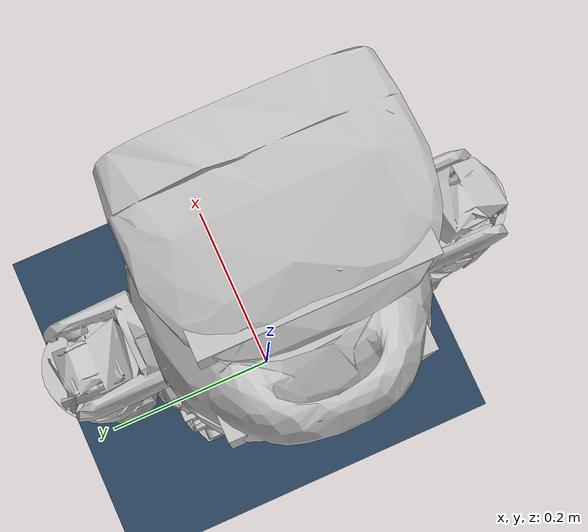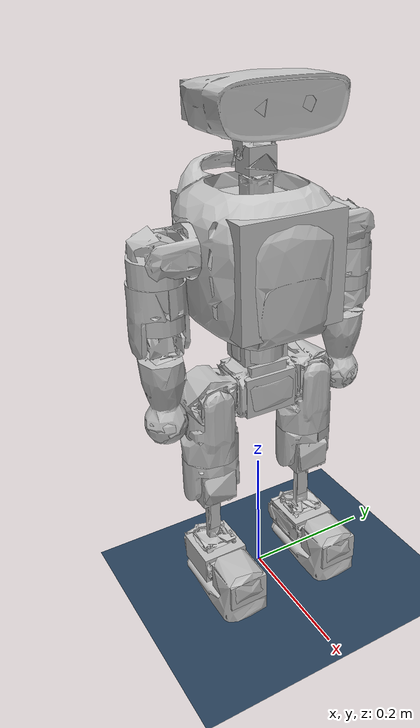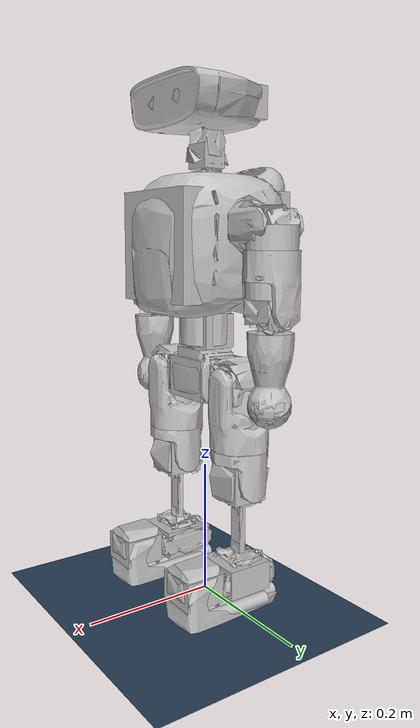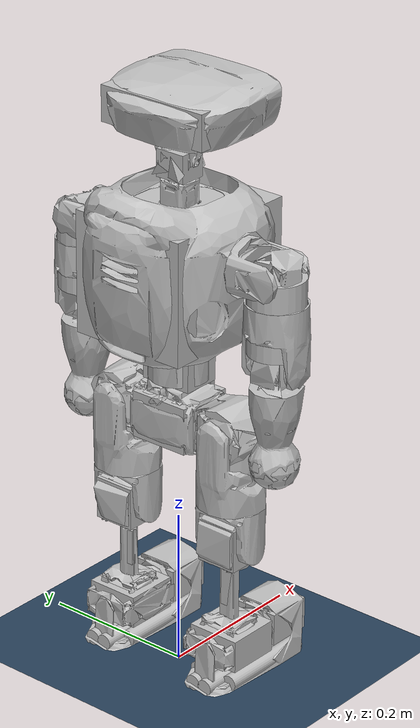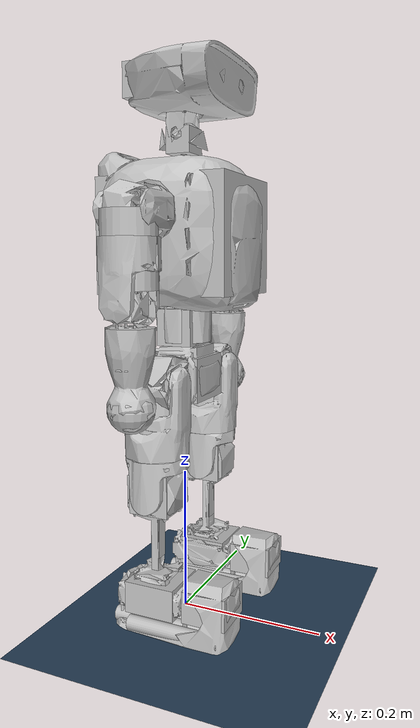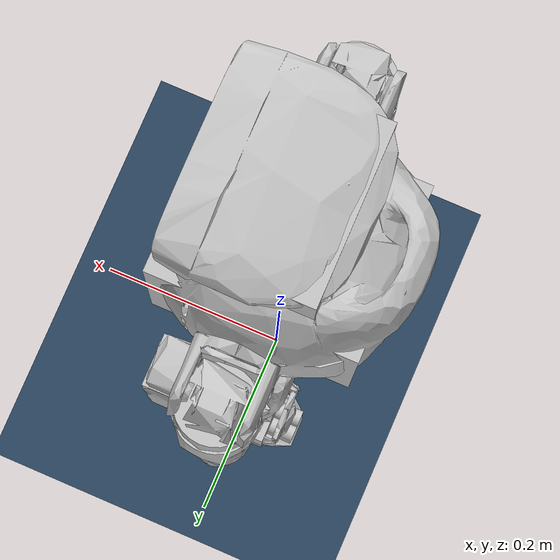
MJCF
<mujoco model="mini_pi_plus_pro scene">
  <include file="mini_pi.xml"/>

  <statistic center="0 0 0.25" extent="0.6"/>

  <visual>
    <headlight diffuse="0.6 0.6 0.6" ambient="0.3 0.3 0.3" specular="0 0 0"/>
    <rgba haze="0.15 0.25 0.35 1"/>
    <global azimuth="-160" elevation="-20"/>
  </visual>

  <asset>
    <texture type="skybox" builtin="gradient" rgb1="0.3 0.5 0.7" rgb2="0 0 0" width="512" height="3072"/>
    <texture type="2d" name="groundplane" builtin="checker" mark="edge" rgb1="0.2 0.3 0.4" rgb2="0.1 0.2 0.3"
      markrgb="0.8 0.8 0.8" width="300" height="300"/>
    <material name="groundplane" texture="groundplane" texuniform="true" texrepeat="5 5" reflectance="0.2"/>
  </asset>

  <worldbody>
    <light pos="0 0 1.5" dir="0 0 -1" directional="true"/>
    <geom name="floor" size="0 0 0.05" type="plane" material="groundplane"/>
    <camera name="track" mode="trackcom" pos="0 -1.3 0.6" xyaxes="1 0 0 0 0.25 1"/>
  </worldbody>
</mujoco>

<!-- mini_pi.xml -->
<mujoco model="mini_pi_plus_pro">
  <compiler angle="radian" meshdir="meshes" autolimits="true"/>

  <option integrator="implicitfast"/>

  <default>
    <default class="arm_motor">
      <joint damping="0.01" armature="0.008234" frictionloss="0.01"/>
    </default>
    <default class="wrist_motor">
      <joint damping="0.01" armature="0.008234" frictionloss="0.01"/>
    </default>
    <default class="leg_motor">
      <joint damping="0.01" armature="0.013212" frictionloss="0.01"/>
    </default>
    <default class="waist_motor">
      <joint damping="0.01" armature="0.008890" frictionloss="0.01"/>
    </default>
    <default class="ankle_motor">
      <joint damping="0.01" armature="0.013212" frictionloss="0.01"/>
    </default>
  </default>

  <asset>
    <mesh name="base_link" content_type="model/stl" file="base_link.STL"/>
    <mesh name="r_hip_pitch_link" content_type="model/stl" file="r_hip_pitch_link.STL"/>
    <mesh name="r_hip_roll_link" content_type="model/stl" file="r_hip_roll_link.STL"/>
    <mesh name="r_thigh_link" content_type="model/stl" file="r_thigh_link.STL"/>
    <mesh name="r_calf_link" content_type="model/stl" file="r_calf_link.STL"/>
    <mesh name="r_ankle_pitch_link" content_type="model/stl" file="r_ankle_pitch_link.STL"/>
    <mesh name="r_ankle_roll_link" content_type="model/stl" file="r_ankle_roll_link.STL"/>
    <mesh name="l_hip_pitch_link" content_type="model/stl" file="l_hip_pitch_link.STL"/>
    <mesh name="l_hip_roll_link" content_type="model/stl" file="l_hip_roll_link.STL"/>
    <mesh name="l_thigh_link" content_type="model/stl" file="l_thigh_link.STL"/>
    <mesh name="l_calf_link" content_type="model/stl" file="l_calf_link.STL"/>
    <mesh name="l_ankle_pitch_link" content_type="model/stl" file="l_ankle_pitch_link.STL"/>
    <mesh name="l_ankle_roll_link" content_type="model/stl" file="l_ankle_roll_link.STL"/>
    <mesh name="waist_yaw_link" content_type="model/stl" file="waist_yaw_link.STL"/>
    <mesh name="torso_link" content_type="model/stl" file="torso_link.STL"/>
    <mesh name="r_shoulder_pitch_link" content_type="model/stl" file="r_shoulder_pitch_link.STL"/>
    <mesh name="r_shoulder_roll_link" content_type="model/stl" file="r_shoulder_roll_link.STL"/>
    <mesh name="r_upper_arm_link" content_type="model/stl" file="r_upper_arm_link.STL"/>
    <mesh name="r_elbow_link" content_type="model/stl" file="r_elbow_link.STL"/>
    <mesh name="r_wrist_link" content_type="model/stl" file="r_wrist_link.STL"/>
    <mesh name="l_shoulder_pitch_link" content_type="model/stl" file="l_shoulder_pitch_link.STL"/>
    <mesh name="l_shoulder_roll_link" content_type="model/stl" file="l_shoulder_roll_link.STL"/>
    <mesh name="l_upper_arm_link" content_type="model/stl" file="l_upper_arm_link.STL"/>
    <mesh name="l_elbow_link" content_type="model/stl" file="l_elbow_link.STL"/>
    <mesh name="l_wrist_link" content_type="model/stl" file="l_wrist_link.STL"/>
    <mesh name="head_yaw_link" content_type="model/stl" file="head_yaw_link.STL"/>
    <mesh name="head_pitch_link" content_type="model/stl" file="head_pitch_link.STL"/>
    <mesh name="camera_link" content_type="model/stl" file="camera_link.STL"/>
  </asset>

  <worldbody>
    <body name="base_link" pos="0 0 0.385">
      <inertial pos="-0.0001752 3.843e-05 -0.040454" quat="0.703643 0.710509 -0.00345511 0.00714245" mass="1.01956" diaginertia="0.00145422 0.00134965 0.000755255"/>
      <joint name="floating_base_joint" type="free" limited="false" actuatorfrclimited="false"/>
      <geom type="mesh" contype="0" conaffinity="0" group="1" density="0" rgba="0.752941 0.752941 0.752941 1" mesh="base_link"/>
      <geom size="0.038 0.04 0.03" pos="0 0 -0.045" type="box" rgba="0.752941 0.752941 0.752941 1"/>
      <body name="r_hip_pitch_link" pos="0 -0.0475 -0.0435">
        <inertial pos="-9.38e-06 -0.0325263 6.235e-05" quat="0.549552 0.383472 -0.63042 0.391808" mass="0.459453" diaginertia="0.000282238 0.000271802 0.000267971"/>
        <joint name="r_hip_pitch_joint" pos="0 0 0" axis="0 1 0" range="-3.12 2.94" actuatorfrcrange="-21 21" damping="0.02" class="leg_motor"/>
        <geom type="mesh" contype="0" conaffinity="0" group="1" density="0" rgba="0.752941 0.752941 0.752941 1" mesh="r_hip_pitch_link"/>
        <body name="r_hip_roll_link" pos="0 -0.034 0">
          <inertial pos="0.00103267 -0.00034283 -0.0590726" quat="0.701408 0.0549215 0.0558019 0.708447" mass="0.555101" diaginertia="0.000747562 0.000633862 0.000409646"/>
          <joint name="r_hip_roll_joint" pos="0 0 0" axis="1 0 0" range="-3.14 0.17" actuatorfrcrange="-21 21" damping="0.02" class="leg_motor"/>
          <geom type="mesh" contype="0" conaffinity="0" group="1" density="0" rgba="0.752941 0.752941 0.752941 1" mesh="r_hip_roll_link"/>
          <body name="r_thigh_link" pos="-0.00035 0 -0.0974">
            <inertial pos="0.00064557 -0.00075214 -0.0208405" quat="0.703792 0.710207 0.0135977 -0.00990732" mass="0.154842" diaginertia="0.000187812 0.000161216 0.000100573"/>
            <joint name="r_thigh_joint" pos="0 0 0" axis="0 0 1" range="-2.87 2.87" actuatorfrcrange="-21 21" damping="0.02" class="leg_motor"/>
            <geom type="mesh" contype="0" conaffinity="0" group="1" density="0" rgba="0.752941 0.752941 0.752941 1" mesh="r_thigh_link"/>
            <geom size="0.035 0.0275" pos="0 0 0.065" type="cylinder" rgba="0.752941 0.752941 0.752941 1"/>
            <body name="r_calf_link" pos="0 0 -0.045">
              <inertial pos="-9.91e-06 -0.00300301 -0.0666422" quat="0.999997 -0.0010266 -0.000572947 -0.00207293" mass="0.866123" diaginertia="0.00423712 0.0042205 0.000435659"/>
              <joint name="r_calf_joint" pos="0 0 0" axis="0 1 0" range="-2.14 2.35" actuatorfrcrange="-21 21" damping="0.02" class="leg_motor"/>
              <geom type="mesh" contype="0" conaffinity="0" group="1" density="0" rgba="0.752941 0.752941 0.752941 1" mesh="r_calf_link"/>
              <geom size="0.0275 0.0275 0.0275" type="box" rgba="0.752941 0.752941 0.752941 1"/>
              <geom size="0.005 0.01 0.0275" pos="0 0 -0.065" type="box" rgba="0.752941 0.752941 0.752941 1"/>
              <body name="r_ankle_pitch_link" pos="0 0 -0.14">
                <inertial pos="0.00503044 0.00051345 -0.00016685" quat="-0.00108772 0.710445 -0.00435661 0.703738" mass="0.163526" diaginertia="0.00028931 0.000208237 0.000115362"/>
                <joint name="r_ankle_pitch_joint" pos="0 0 0" axis="0 1 0" range="-0.92 0.97" actuatorfrcrange="-21 21" damping="0.02" class="ankle_motor"/>
                <geom type="mesh" contype="0" conaffinity="0" group="1" density="0" rgba="0.752941 0.752941 0.752941 1" mesh="r_ankle_pitch_link"/>
                <geom size="0.035 0.035 0.021" pos="0.0035 0 0" type="box" rgba="0.752941 0.752941 0.752941 1"/>
                <body name="r_ankle_roll_link" pos="0.051 0 0">
                  <inertial pos="0.00459426 8.133e-05 -0.0132325" quat="0.56339 0.425522 0.422064 0.568669" mass="0.62913" diaginertia="0.00153188 0.00142237 0.000479052"/>
                  <joint name="r_ankle_roll_joint" pos="0 0 0" axis="1 0 0" range="-0.78 0.78" actuatorfrcrange="-21 21" damping="0.02" class="ankle_motor"/>
                  <geom type="mesh" contype="0" conaffinity="0" group="1" density="0" rgba="0.752941 0.752941 0.752941 1" mesh="r_ankle_roll_link"/>
                  <geom size="0.03 0.03 0.021" pos="0.028 0 0" type="box" rgba="0.752941 0.752941 0.752941 1"/>
                  <geom size="0.01 0.065" pos="-0.017 -0.025 -0.04" quat="0.707105 0 0.707108 0" type="cylinder" rgba="0.752941 0.752941 0.752941 1"/>
                  <geom size="0.01 0.082" pos="-0.0272 -0.009 -0.04" quat="0.707105 0 -0.707108 0" type="cylinder" rgba="0.752941 0.752941 0.752941 1"/>
                  <geom size="0.01 0.082" pos="-0.0272 0.009 -0.04" quat="0.707105 0 -0.707108 0" type="cylinder" rgba="0.752941 0.752941 0.752941 1"/>
                  <geom size="0.01 0.065" pos="-0.017 0.025 -0.04" quat="0.707105 0 0.707108 0" type="cylinder" rgba="0.752941 0.752941 0.752941 1"/>
                </body>
              </body>
            </body>
          </body>
        </body>
      </body>
      <body name="l_hip_pitch_link" pos="0 0.0475 -0.0435">
        <inertial pos="-9.38e-06 0.0325263 6.235e-05" quat="0.383472 0.549552 -0.391808 0.63042" mass="0.459453" diaginertia="0.000282238 0.000271802 0.000267971"/>
        <joint name="l_hip_pitch_joint" pos="0 0 0" axis="0 1 0" range="-3.12 2.94" actuatorfrcrange="-21 21" damping="0.02" class="leg_motor"/>
        <geom type="mesh" contype="0" conaffinity="0" group="1" density="0" rgba="0.752941 0.752941 0.752941 1" mesh="l_hip_pitch_link"/>
        <body name="l_hip_roll_link" pos="0 0.034 0">
          <inertial pos="0.00103267 0.00034283 -0.0590726" quat="0.708447 0.0558019 0.0549215 0.701408" mass="0.555101" diaginertia="0.000747562 0.000633862 0.000409646"/>
          <joint name="l_hip_roll_joint" pos="0 0 0" axis="1 0 0" range="-0.17 3.14" actuatorfrcrange="-21 21" damping="0.02" class="leg_motor"/>
          <geom type="mesh" contype="0" conaffinity="0" group="1" density="0" rgba="0.752941 0.752941 0.752941 1" mesh="l_hip_roll_link"/>
          <body name="l_thigh_link" pos="-0.00035 0 -0.0974">
            <inertial pos="0.00064557 0.00075214 -0.0208405" quat="0.710207 0.703792 0.00990732 -0.0135977" mass="0.154842" diaginertia="0.000187812 0.000161216 0.000100573"/>
            <joint name="l_thigh_joint" pos="0 0 0" axis="0 0 1" range="-2.87 2.87" actuatorfrcrange="-21 21" damping="0.02" class="leg_motor"/>
            <geom type="mesh" contype="0" conaffinity="0" group="1" density="0" rgba="0.752941 0.752941 0.752941 1" mesh="l_thigh_link"/>
            <geom size="0.035 0.0275" pos="0 0 0.065" type="cylinder" rgba="0.752941 0.752941 0.752941 1"/>
            <body name="l_calf_link" pos="0 0 -0.045">
              <inertial pos="-9.91e-06 0.00300301 -0.0666422" quat="0.999997 0.0010266 -0.000572947 0.00207293" mass="0.866123" diaginertia="0.00423712 0.0042205 0.000435659"/>
              <joint name="l_calf_joint" pos="0 0 0" axis="0 1 0" range="-2.14 2.35" actuatorfrcrange="-21 21" damping="0.02" class="leg_motor"/>
              <geom type="mesh" contype="0" conaffinity="0" group="1" density="0" rgba="0.752941 0.752941 0.752941 1" mesh="l_calf_link"/>
              <geom size="0.0275 0.0275 0.0275" type="box" rgba="0.752941 0.752941 0.752941 1"/>
              <geom size="0.005 0.01 0.0275" pos="0 0 -0.065" type="box" rgba="0.752941 0.752941 0.752941 1"/>
              <body name="l_ankle_pitch_link" pos="0 0 -0.14">
                <inertial pos="0.00503044 -0.00051345 -0.00016685" quat="0.00108772 0.710445 0.00435661 0.703738" mass="0.163526" diaginertia="0.00028931 0.000208237 0.000115362"/>
                <joint name="l_ankle_pitch_joint" pos="0 0 0" axis="0 1 0" range="-0.92 0.97" actuatorfrcrange="-21 21" damping="0.02" class="ankle_motor"/>
                <geom type="mesh" contype="0" conaffinity="0" group="1" density="0" rgba="0.752941 0.752941 0.752941 1" mesh="l_ankle_pitch_link"/>
                <geom size="0.035 0.035 0.021" pos="0.0035 0 0" type="box" rgba="0.752941 0.752941 0.752941 1"/>
                <body name="l_ankle_roll_link" pos="0.051 0 0">
                  <inertial pos="0.00459426 -8.133e-05 -0.0132325" quat="0.568669 0.422064 0.425522 0.56339" mass="0.62913" diaginertia="0.00153188 0.00142237 0.000479052"/>
                  <joint name="l_ankle_roll_joint" pos="0 0 0" axis="1 0 0" range="-0.78 0.78" actuatorfrcrange="-21 21" damping="0.02" class="ankle_motor"/>
                  <geom type="mesh" contype="0" conaffinity="0" group="1" density="0" rgba="0.752941 0.752941 0.752941 1" mesh="l_ankle_roll_link"/>
                  <geom size="0.03 0.03 0.021" pos="0.028 0 0" type="box" rgba="0.752941 0.752941 0.752941 1"/>
                  <geom size="0.01 0.065" pos="-0.017 -0.025 -0.04" quat="0.707105 0 0.707108 0" type="cylinder" rgba="0.752941 0.752941 0.752941 1"/>
                  <geom size="0.01 0.082" pos="-0.0272 -0.009 -0.04" quat="0.707105 0 -0.707108 0" type="cylinder" rgba="0.752941 0.752941 0.752941 1"/>
                  <geom size="0.01 0.082" pos="-0.0272 0.009 -0.04" quat="0.707105 0 -0.707108 0" type="cylinder" rgba="0.752941 0.752941 0.752941 1"/>
                  <geom size="0.01 0.065" pos="-0.017 0.025 -0.04" quat="0.707105 0 0.707108 0" type="cylinder" rgba="0.752941 0.752941 0.752941 1"/>
                </body>
              </body>
            </body>
          </body>
        </body>
      </body>
      <body name="waist_yaw_link" pos="0 0 0.0248">
        <site name="imu" size="0.01" pos="-0.0 -0.0 0.0"/>
        <inertial pos="0 0 0.00291865" mass="0.454646" diaginertia="0.00026096 0.00026096 0.00025113"/>
        <joint name="waist_yaw_joint" pos="0 0 0" axis="0 0 1" range="-2.7 2.7" actuatorfrcrange="-16 16" damping="0.02" class="waist_motor"/>
        <geom type="mesh" contype="0" conaffinity="0" group="1" density="0" rgba="0.752941 0.752941 0.752941 1" mesh="waist_yaw_link"/>
        <geom size="0.025 0.035 0.025" type="box" rgba="0.752941 0.752941 0.752941 1"/>
        <body name="torso_link" pos="0 0 0.0325">
          <inertial pos="0 0 0.0941925" quat="0.707107 0.707107 0 0" mass="4.22444" diaginertia="0.026144 0.0259294 0.0215759"/>
          <geom type="mesh" contype="0" conaffinity="0" group="1" density="0" rgba="0.752941 0.752941 0.752941 1" mesh="torso_link"/>
          <geom size="0.0925 0.0775 0.0775" pos="0 0 0.09" type="box" rgba="0.752941 0.752941 0.752941 1"/>
          <body name="r_shoulder_pitch_link" pos="0 -0.1084 0.117">
            <inertial pos="-0.0023165 -0.0172048 0.00020825" quat="-0.034283 0.706989 0.0142854 0.706249" mass="0.139352" diaginertia="0.000145208 0.000122162 7.54598e-05"/>
            <joint name="r_shoulder_pitch_joint" pos="0 0 0" axis="0 1 0" range="-4.18 1.04" actuatorfrcrange="-10 10" damping="0.02" class="arm_motor"/>
            <geom type="mesh" contype="0" conaffinity="0" group="1" density="0" rgba="0.752941 0.752941 0.752941 1" mesh="r_shoulder_pitch_link"/>
            <body name="r_shoulder_roll_link" pos="0 -0.038 0">
              <inertial pos="-0.00178943 -0.00020309 -0.0247066" quat="0.693173 -0.0220164 -0.0171086 0.720232" mass="0.562196" diaginertia="0.000528286 0.000519392 0.000156632"/>
              <joint name="r_shoulder_roll_joint" pos="0 0 0" axis="1 0 0" range="-3.34 0.13" actuatorfrcrange="-10 10" damping="0.02" class="arm_motor"/>
              <geom type="mesh" contype="0" conaffinity="0" group="1" density="0" rgba="0.752941 0.752941 0.752941 1" mesh="r_shoulder_roll_link"/>
              <body name="r_upper_arm_link" pos="0 0 -0.0724">
                <inertial pos="3.107e-05 -0.00138646 -0.0121349" quat="0.619141 0.785272 -0.00344701 0.000473666" mass="0.153183" diaginertia="0.000177072 0.000143883 0.000111845"/>
                <joint name="r_upper_arm_joint" pos="0 0 0" axis="0 0 1" range="-2.16 2.16" actuatorfrcrange="-10 10" damping="0.02" class="arm_motor"/>
                <geom type="mesh" contype="0" conaffinity="0" group="1" density="0" rgba="0.752941 0.752941 0.752941 1" mesh="r_upper_arm_link"/>
                <geom size="0.035 0.0475" pos="0 0 0.025" type="cylinder" rgba="0.752941 0.752941 0.752941 1"/>
                <body name="r_elbow_link" pos="0 0 -0.038">
                  <inertial pos="5.69e-05 -0.00308341 -0.00211549" quat="0.671089 0.741218 0.0118416 -0.00978532" mass="0.313175" diaginertia="0.000107759 9.78655e-05 9.33151e-05"/>
                  <joint name="r_elbow_joint" pos="0 0 0" axis="0 1 0" range="-1.73 1.73" actuatorfrcrange="-10 10" damping="0.02" class="arm_motor"/>
                  <geom type="mesh" contype="0" conaffinity="0" group="1" density="0" rgba="0.752941 0.752941 0.752941 1" mesh="r_elbow_link"/>
                  <body name="r_wrist_link" pos="0 0 -0.029">
                    <inertial pos="7.51e-06 1.19e-06 -0.0557209" quat="0.707107 -8.19501e-05 -8.19501e-05 0.707107" mass="0.13723" diaginertia="0.0002255 0.00022457 5.2e-05"/>
                    <geom type="mesh" contype="0" conaffinity="0" group="1" density="0" rgba="0.752941 0.752941 0.752941 1" mesh="r_wrist_link"/>
                    <geom size="0.025 0.015" pos="0 0 -0.035" type="cylinder" rgba="0.752941 0.752941 0.752941 1"/>
                    <geom size="0.03" pos="0 0 -0.1" rgba="0.752941 0.752941 0.752941 1"/>
                  </body>
                </body>
              </body>
            </body>
          </body>
          <body name="l_shoulder_pitch_link" pos="0 0.1084 0.11698">
            <inertial pos="-0.0023165 0.0172048 0.00020825" quat="0.034283 0.706989 -0.0142854 0.706249" mass="0.139352" diaginertia="0.000145208 0.000122162 7.54598e-05"/>
            <joint name="l_shoulder_pitch_joint" pos="0 0 0" axis="0 1 0" range="-4.18 1.04" actuatorfrcrange="-10 10" damping="0.02" class="arm_motor"/>
            <geom type="mesh" contype="0" conaffinity="0" group="1" density="0" rgba="0.752941 0.752941 0.752941 1" mesh="l_shoulder_pitch_link"/>
            <body name="l_shoulder_roll_link" pos="0 0.038 0">
              <inertial pos="-0.00178943 0.00020309 -0.0247066" quat="0.720232 -0.0171086 -0.0220164 0.693173" mass="0.562196" diaginertia="0.000528286 0.000519392 0.000156632"/>
              <joint name="l_shoulder_roll_joint" pos="0 0 0" axis="1 0 0" range="-0.13 3.34" actuatorfrcrange="-10 10" damping="0.02" class="arm_motor"/>
              <geom type="mesh" contype="0" conaffinity="0" group="1" density="0" rgba="0.752941 0.752941 0.752941 1" mesh="l_shoulder_roll_link"/>
              <body name="l_upper_arm_link" pos="0 0 -0.0724">
                <inertial pos="3.107e-05 0.00138646 -0.0121349" quat="0.785272 0.619141 -0.000473666 0.00344701" mass="0.153183" diaginertia="0.000177072 0.000143883 0.000111845"/>
                <joint name="l_upper_arm_joint" pos="0 0 0" axis="0 0 1" range="-2.16 2.16" actuatorfrcrange="-10 10" damping="0.02" class="arm_motor"/>
                <geom type="mesh" contype="0" conaffinity="0" group="1" density="0" rgba="0.752941 0.752941 0.752941 1" mesh="l_upper_arm_link"/>
                <geom size="0.035 0.0475" pos="0 0 0.025" type="cylinder" rgba="0.752941 0.752941 0.752941 1"/>
                <body name="l_elbow_link" pos="0 0 -0.038">
                  <inertial pos="5.69e-05 0.00308341 -0.00211549" quat="0.741218 0.671089 0.00978532 -0.0118416" mass="0.313175" diaginertia="0.000107759 9.78655e-05 9.33151e-05"/>
                  <joint name="l_elbow_joint" pos="0 0 0" axis="0 1 0" range="-1.73 1.73" actuatorfrcrange="-10 10" damping="0.02" class="arm_motor"/>
                  <geom type="mesh" contype="0" conaffinity="0" group="1" density="0" rgba="0.752941 0.752941 0.752941 1" mesh="l_elbow_link"/>
                  <body name="l_wrist_link" pos="0 0 -0.029">
                    <inertial pos="7.51e-06 -1.19e-06 -0.0557209" quat="0.707107 -8.19501e-05 -8.19501e-05 0.707107" mass="0.13723" diaginertia="0.0002255 0.00022457 5.2e-05"/>
                    <geom type="mesh" contype="0" conaffinity="0" group="1" density="0" rgba="0.752941 0.752941 0.752941 1" mesh="l_wrist_link"/>
                    <geom size="0.025 0.015" pos="0 0 -0.035" type="cylinder" rgba="0.752941 0.752941 0.752941 1"/>
                    <geom size="0.03" pos="0 0 -0.1" rgba="0.752941 0.752941 0.752941 1"/>
                  </body>
                </body>
              </body>
            </body>
          </body>
          <body name="head_yaw_link" pos="0 -0.00025 0.1981">
            <inertial pos="0 0 0.0240816" mass="0.209663" diaginertia="5.519e-05 5.519e-05 5.081e-05"/>
            <joint name="head_yaw_joint" pos="0 0 0" axis="0 0 1" range="-1.43 1.43" actuatorfrcrange="-3.6 3.6" damping="0.02"/>
            <geom type="mesh" contype="0" conaffinity="0" group="1" density="0" rgba="0.752941 0.752941 0.752941 1" mesh="head_yaw_link"/>
            <geom size="0.0175 0.02 0.0175" pos="0 0 0.0195" type="box" rgba="0.752941 0.752941 0.752941 1"/>
            <body name="head_pitch_link" pos="0 0 0.0275">
              <inertial pos="0.0122209 -0.00264278 0.0637946" quat="0.483557 0.492962 -0.50862 0.514263" mass="0.484925" diaginertia="0.0018194 0.0014398 0.000964689"/>
              <joint name="head_pitch_joint" pos="0 0 0" axis="0 1 0" range="-0.94 0.88" actuatorfrcrange="-3.6 3.6" damping="0.02"/>
              <geom type="mesh" contype="0" conaffinity="0" group="1" density="0" rgba="0.752941 0.752941 0.752941 1" mesh="head_pitch_link"/>
              <geom size="0.06 0.075 0.0225" pos="0.01 0 0.06" type="box" rgba="0.752941 0.752941 0.752941 1"/>
              <body name="camera_link" pos="0.03995 0.004457 0.063101">
                <inertial pos="0.00965519 0.00075253 7.52e-06" quat="0.707088 0.707088 0.00516523 0.00516523" mass="0.0584" diaginertia="7.26043e-05 7.249e-05 5.51568e-06"/>
                <geom type="mesh" contype="0" conaffinity="0" group="1" density="0" rgba="0.752941 0.752941 0.752941 1" mesh="camera_link"/>
              </body>
            </body>
          </body>
        </body>
      </body>
    </body>
  </worldbody>
  <actuator>
    <motor name="l_hip_pitch_joint" joint="l_hip_pitch_joint" gear="1" ctrllimited="true" ctrlrange="-20 20"/>
    <motor name="l_hip_roll_joint" joint="l_hip_roll_joint" gear="1" ctrllimited="true" ctrlrange="-20 20"/>
    <motor name="l_thigh_joint" joint="l_thigh_joint" gear="1" ctrllimited="true" ctrlrange="-20 20"/>
    <motor name="l_calf_joint" joint="l_calf_joint" gear="1" ctrllimited="true" ctrlrange="-20 20"/>
    <motor name="l_ankle_pitch_joint" joint="l_ankle_pitch_joint" gear="1" ctrllimited="true" ctrlrange="-20 20"/>
    <motor name="l_ankle_roll_joint" joint="l_ankle_roll_joint" gear="1" ctrllimited="true" ctrlrange="-20 20"/>
    <motor name="r_hip_pitch_joint" joint="r_hip_pitch_joint" gear="1" ctrllimited="true" ctrlrange="-20 20"/>
    <motor name="r_hip_roll_joint" joint="r_hip_roll_joint" gear="1" ctrllimited="true" ctrlrange="-20 20"/>
    <motor name="r_thigh_joint" joint="r_thigh_joint" gear="1" ctrllimited="true" ctrlrange="-20 20"/>
    <motor name="r_calf_joint" joint="r_calf_joint" gear="1" ctrllimited="true" ctrlrange="-20 20"/>
    <motor name="r_ankle_pitch_joint" joint="r_ankle_pitch_joint" gear="1" ctrllimited="true" ctrlrange="-20 20"/>
    <motor name="r_ankle_roll_joint" joint="r_ankle_roll_joint" gear="1" ctrllimited="true" ctrlrange="-20 20"/>
    <motor name="waist_yaw_joint" joint="waist_yaw_joint" gear="1" ctrllimited="true" ctrlrange="-16 16"/>
    <motor name="l_shoulder_pitch_joint" joint="l_shoulder_pitch_joint" gear="1" ctrllimited="true" ctrlrange="-10 10"/>
    <motor name="l_shoulder_roll_joint" joint="l_shoulder_roll_joint" gear="1" ctrllimited="true" ctrlrange="-10 10"/>
    <motor name="l_upper_arm_joint" joint="l_upper_arm_joint" gear="1" ctrllimited="true" ctrlrange="-10 10"/>
    <motor name="l_elbow_joint" joint="l_elbow_joint" gear="1" ctrllimited="true" ctrlrange="-10 10"/>
    <motor name="r_shoulder_pitch_joint" joint="r_shoulder_pitch_joint" gear="1" ctrllimited="true" ctrlrange="-10 10"/>
    <motor name="r_shoulder_roll_joint" joint="r_shoulder_roll_joint" gear="1" ctrllimited="true" ctrlrange="-10 10"/>
    <motor name="r_upper_arm_joint" joint="r_upper_arm_joint" gear="1" ctrllimited="true" ctrlrange="-10 10"/>
    <motor name="r_elbow_joint" joint="r_elbow_joint" gear="1" ctrllimited="true" ctrlrange="-10 10"/>
    <motor name="head_yaw_joint" joint="head_yaw_joint" gear="1" ctrllimited="true" ctrlrange="-3.6 3.6"/>
    <motor name="head_pitch_joint" joint="head_pitch_joint" gear="1" ctrllimited="true" ctrlrange="-3.6 3.6"/>
  </actuator>
  <sensor>
    <framequat name="orientation" objtype="site" noise="0.001" objname="imu"/>
    <framepos name="position" objtype="site" noise="0.001" objname="imu"/>
    <gyro name="angular-velocity" site="imu" noise="0.005" cutoff="34.9"/>
    <velocimeter name="linear-velocity" site="imu" noise="0.001" cutoff="30"/>
    <accelerometer name="linear-acceleration" site="imu" noise="0.005" cutoff="157"/>
    <magnetometer name="magnetometer" site="imu"/>
  </sensor>

  <keyframe>
    <!-- Ready stance: 0.25 rad symmetric crouch, arms abducted 0.2 rad
         so the hands clear the thighs. Base z puts the soles on z=0. -->
    <key name="home"
      qpos="
    0 0 0.367
    1 0 0 0
    -0.25 0 0 0.5 -0.25 0 -0.25 0 0 0.5 -0.25 0 0 0 -0.2 0 0 0 0.2 0 0 0 0
    "
      ctrl="
    -0.25 0 0 0.5 -0.25 0 -0.25 0 0 0.5 -0.25 0 0 0 0.2 0 0 0 -0.2 0 0 0 0
    "/>
  </keyframe>
</mujoco>
